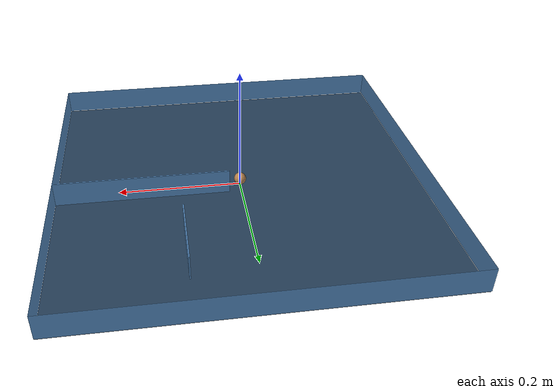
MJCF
<mujoco model="planar point mass">
  <include file="./common/skybox.xml"/>
  <include file="./common/visual.xml"/>
  <include file="./common/materials.xml"/>

  <option timestep="0.02">
  </option>

  <default>
    <joint type="hinge" axis="0 0 1" limited="true" range="-.29 .29" damping="1"/>
    <motor gear=".1" ctrlrange="-1 1" ctrllimited="true"/>
  </default>

  <worldbody>
    <light name="light" pos="0 0 1"/>
    <camera name="fixed" pos="0 0 .75" quat="1 0 0 0"/>
    <geom name="ground" type="plane" pos="0 0 0" size=".3 .3 .1" material="grid"/>
    <geom name="wall_x" type="plane" pos="-.3 0 .02" zaxis="1 0 0"  size=".02 .3 .02" material="decoration"/>
    <geom name="wall_y" type="plane" pos="0 -.3 .02" zaxis="0 1 0"  size=".3 .02 .02" material="decoration"/>
    <geom name="wall_neg_x" type="plane" pos=".3 0 .02" zaxis="-1 0 0"  size=".02 .3 .02" material="decoration"/>
    <geom name="wall_neg_y" type="plane" pos="0 .3 .02" zaxis="0 -1 0"  size=".3 .02 .02" material="decoration"/>

    <geom name="obstacle_x" type="box" pos=".1 .16 .02"   size=".001 .06 .02" material="decoration"/>

    <geom name="quad_y" type="box" pos=".16 .02 .02" size=".14 .001 .02" material="decoration"/>

    <body name="pointmass" pos="0 0 .01">
      <camera name="cam0" pos="0 -0.3 0.3" xyaxes="1 0 0 0 0.7 0.7"/>
      <joint name="root_x" type="slide"  pos="0 0 0" axis="1 0 0" />
      <joint name="root_y" type="slide"  pos="0 0 0" axis="0 1 0" />
      <geom name="pointmass" type="sphere" size=".01" solref="0.01 1.1"  material="self" mass=".3"/>
    </body>
    <geom name="target" pos="0 0 .01" material="target" type="sphere" size=".001"/>

  </worldbody>

  <tendon>
    <fixed name="t1">
      <joint joint="root_x" coef="1"/>
      <joint joint="root_y" coef="0"/>
    </fixed>
    <fixed name="t2">
      <joint joint="root_x" coef="0"/>
      <joint joint="root_y" coef="1"/>
    </fixed>
  </tendon>

  <actuator>
    <motor name="t1" tendon="t1"/>
    <motor name="t2" tendon="t2"/>
  </actuator>
</mujoco>

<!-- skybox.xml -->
<mujoco>
    <asset>
        <texture name="skybox" type="skybox" builtin="gradient" rgb1=".4 .6 .8" rgb2="0 0 0"
                 width="800" height="800" mark="random" markrgb="1 1 1"/>
    </asset>
</mujoco>

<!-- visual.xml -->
<mujoco>
    <visual>
        <headlight ambient=".4 .4 .4" diffuse=".8 .8 .8" specular="0.1 0.1 0.1"/>
        <map znear=".01"/>
        <quality shadowsize="2048"/>
    </visual>
</mujoco>

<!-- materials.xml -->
<!--
Common textures, colors and materials to be used throughout this suite. Some
materials such as xxx_highlight are activated on occurence of certain events,
for example receiving a positive reward.
-->
<mujoco>
    <asset>
        <texture name="grid" type="2d" builtin="checker" rgb1=".1 .2 .3" rgb2=".2 .3 .4" width="300" height="300" mark="edge" markrgb=".2 .3 .4"/>
        <material name="grid" texture="grid" texrepeat="1 1" texuniform="true" reflectance=".2"/>
        <material name="self" rgba=".7 .5 .3 1"/>
        <material name="self_default" rgba=".7 .5 .3 1"/>
        <material name="self_highlight" rgba="0 .5 .3 1"/>
        <material name="effector" rgba=".7 .4 .2 1"/>
        <material name="effector_default" rgba=".7 .4 .2 1"/>
        <material name="effector_highlight" rgba="0 .5 .3 1"/>
        <material name="decoration" rgba=".3 .5 .7 1"/>
        <material name="eye" rgba="0 .2 1 1"/>
        <material name="target" rgba=".6 .3 .3 1"/>
        <material name="target_default" rgba=".6 .3 .3 1"/>
        <material name="target_highlight" rgba=".6 .3 .3 .4"/>
        <material name="site" rgba=".5 .5 .5 .3"/>
    </asset>
</mujoco>
